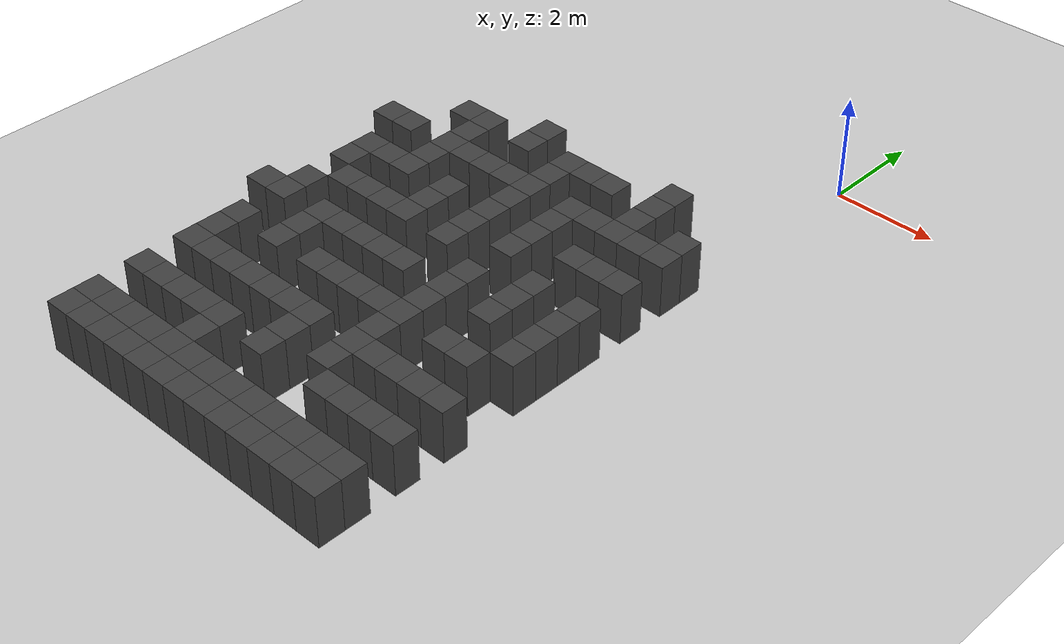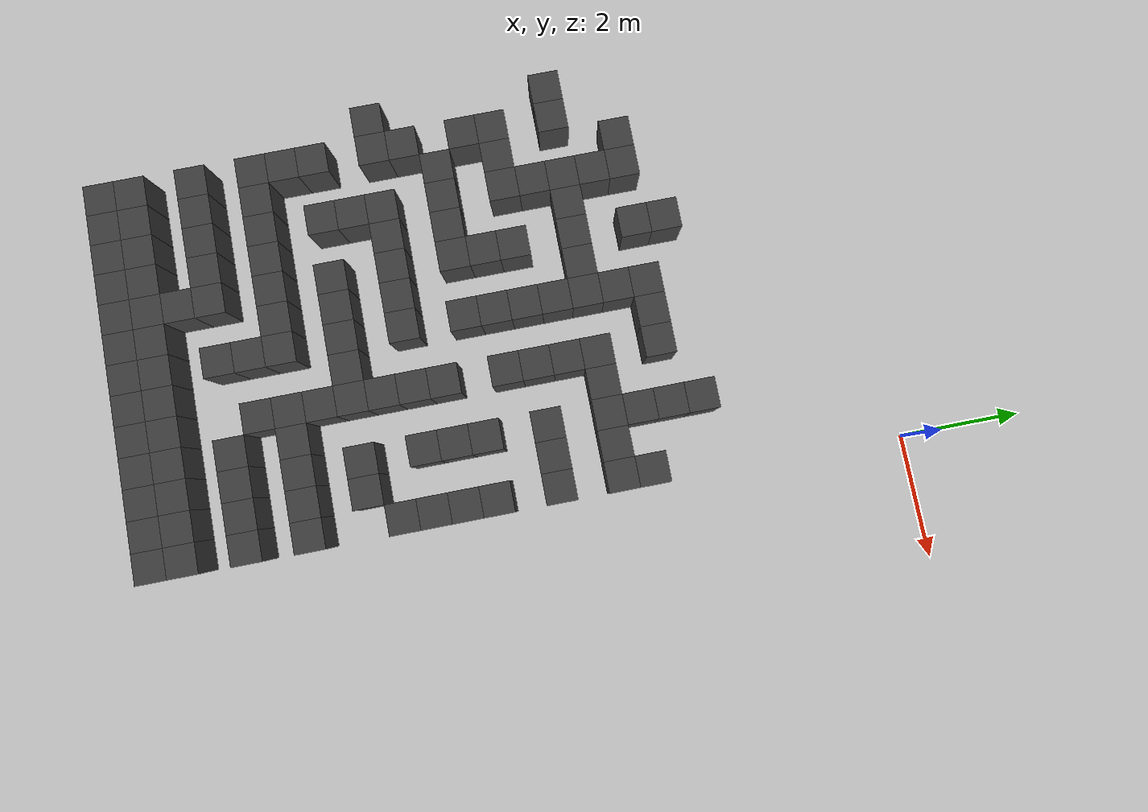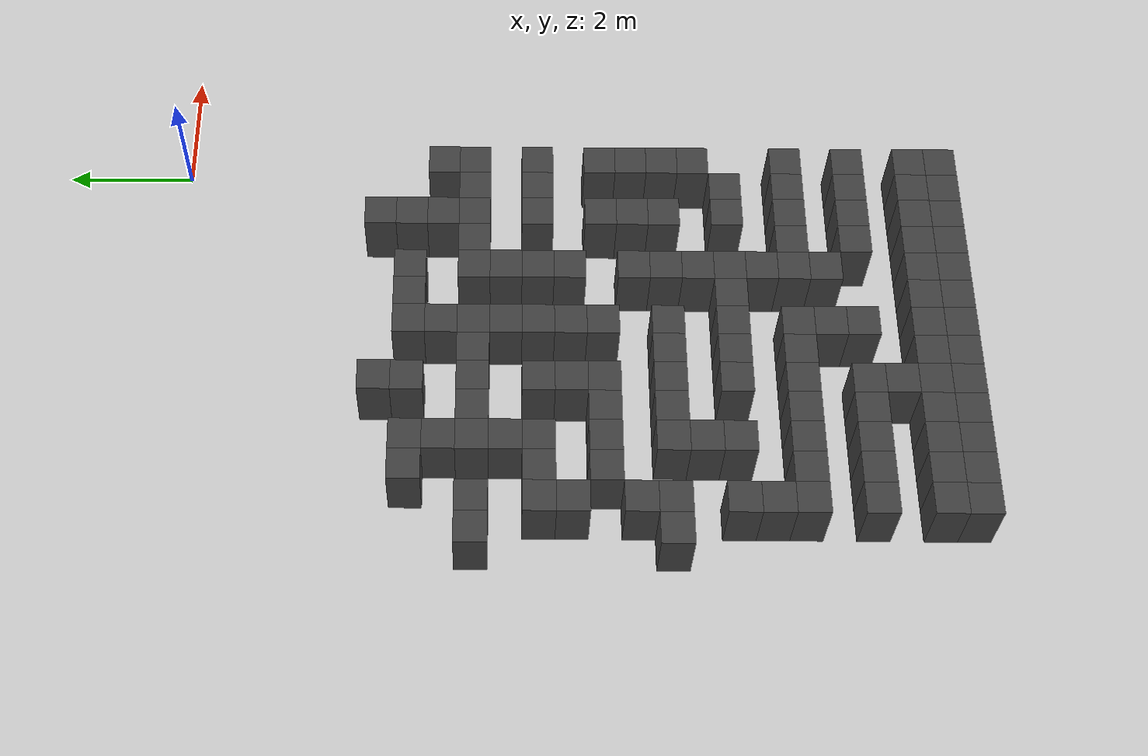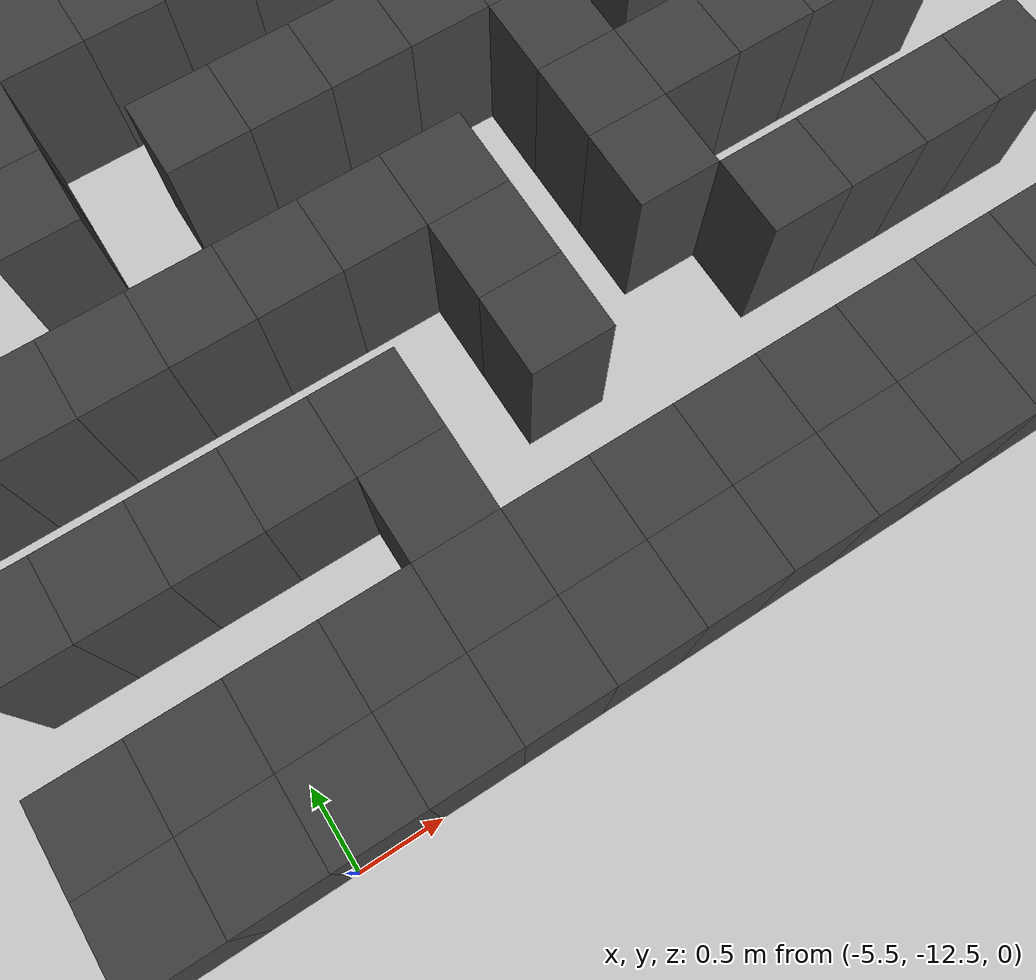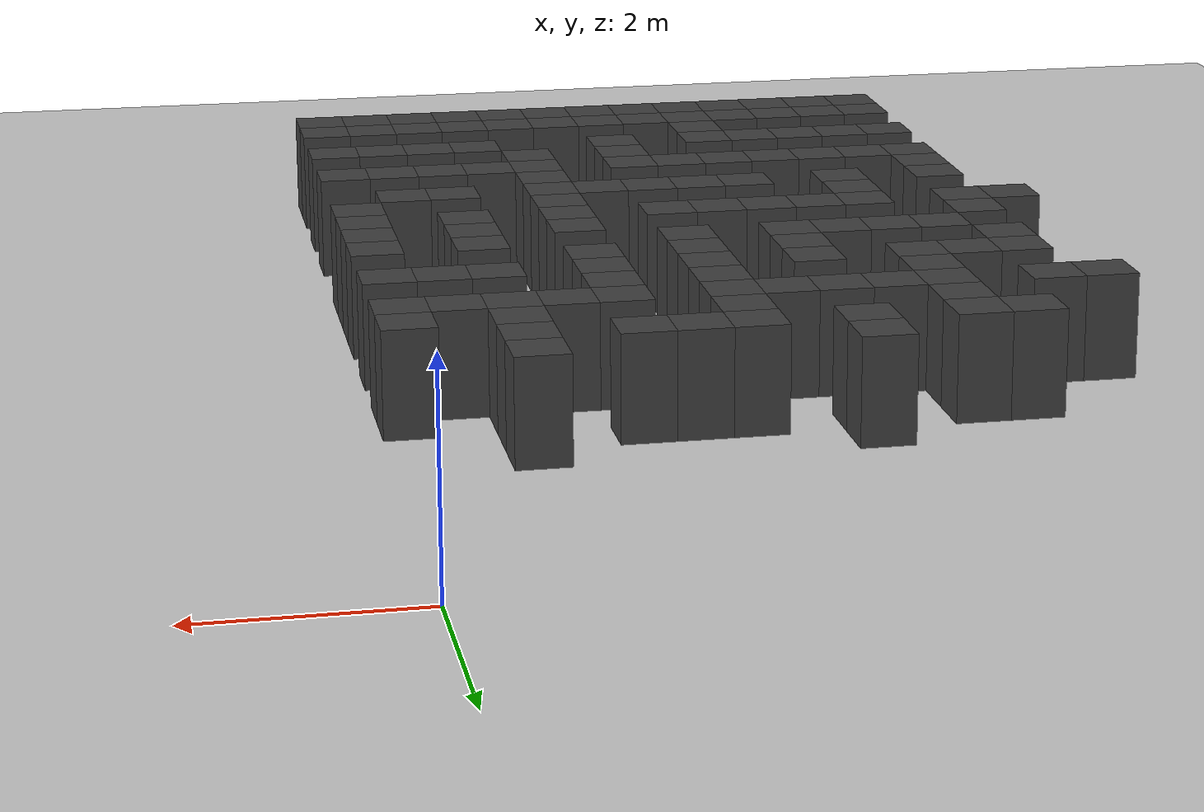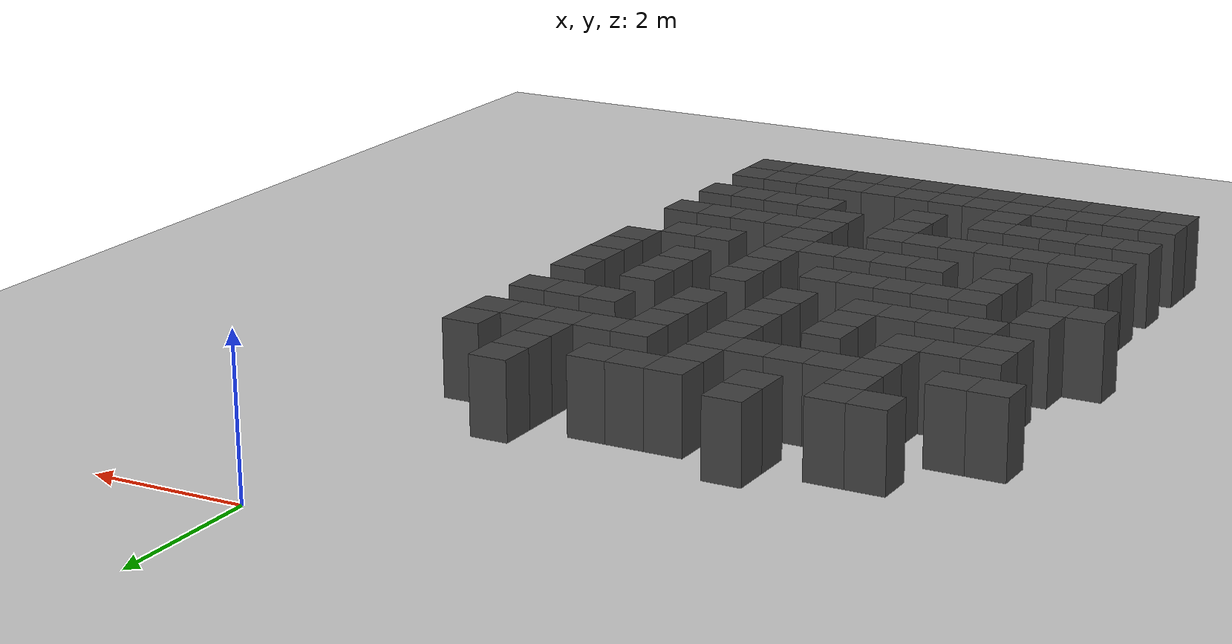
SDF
<sdf version="1.7">
 <world name="map_17508">
  <model name="ground_plane">
   <static>true</static>
   <link name="link">
    <collision name="collision">
     <geometry><plane><normal>0 0 1</normal><size>200 200</size></plane></geometry>
    </collision>
    <visual name="visual">
     <geometry><plane><normal>0 0 1</normal><size>200 200</size></plane></geometry>
     <material><ambient>0.8 0.8 0.8 1</ambient><diffuse>0.8 0.8 0.8 1</diffuse></material>
    </visual>
   </link>
  </model>
  <model name="maze_environment">
   <static>true</static>
   <link name="wall_776">
    <pose>-4.250 -3.250 0.500 0 0 0</pose>
    <collision name="col"><geometry><box><size>0.5 0.5 1.0</size></box></geometry></collision>
    <visual name="vis">
     <geometry><box><size>0.5 0.5 1.0</size></box></geometry>
     <material><ambient>0.15 0.15 0.15 1</ambient><diffuse>0.25 0.25 0.25 1</diffuse></material>
    </visual>
   </link>
   <link name="wall_777">
    <pose>-1.250 -3.250 0.500 0 0 0</pose>
    <collision name="col"><geometry><box><size>0.5 0.5 1.0</size></box></geometry></collision>
    <visual name="vis">
     <geometry><box><size>0.5 0.5 1.0</size></box></geometry>
     <material><ambient>0.15 0.15 0.15 1</ambient><diffuse>0.25 0.25 0.25 1</diffuse></material>
    </visual>
   </link>
   <link name="wall_793">
    <pose>-5.750 -3.750 0.500 0 0 0</pose>
    <collision name="col"><geometry><box><size>0.5 0.5 1.0</size></box></geometry></collision>
    <visual name="vis">
     <geometry><box><size>0.5 0.5 1.0</size></box></geometry>
     <material><ambient>0.15 0.15 0.15 1</ambient><diffuse>0.25 0.25 0.25 1</diffuse></material>
    </visual>
   </link>
   <link name="wall_794">
    <pose>-5.250 -3.750 0.500 0 0 0</pose>
    <collision name="col"><geometry><box><size>0.5 0.5 1.0</size></box></geometry></collision>
    <visual name="vis">
     <geometry><box><size>0.5 0.5 1.0</size></box></geometry>
     <material><ambient>0.15 0.15 0.15 1</ambient><diffuse>0.25 0.25 0.25 1</diffuse></material>
    </visual>
   </link>
   <link name="wall_795">
    <pose>-4.250 -3.750 0.500 0 0 0</pose>
    <collision name="col"><geometry><box><size>0.5 0.5 1.0</size></box></geometry></collision>
    <visual name="vis">
     <geometry><box><size>0.5 0.5 1.0</size></box></geometry>
     <material><ambient>0.15 0.15 0.15 1</ambient><diffuse>0.25 0.25 0.25 1</diffuse></material>
    </visual>
   </link>
   <link name="wall_796">
    <pose>-3.250 -3.750 0.500 0 0 0</pose>
    <collision name="col"><geometry><box><size>0.5 0.5 1.0</size></box></geometry></collision>
    <visual name="vis">
     <geometry><box><size>0.5 0.5 1.0</size></box></geometry>
     <material><ambient>0.15 0.15 0.15 1</ambient><diffuse>0.25 0.25 0.25 1</diffuse></material>
    </visual>
   </link>
   <link name="wall_797">
    <pose>-2.750 -3.750 0.500 0 0 0</pose>
    <collision name="col"><geometry><box><size>0.5 0.5 1.0</size></box></geometry></collision>
    <visual name="vis">
     <geometry><box><size>0.5 0.5 1.0</size></box></geometry>
     <material><ambient>0.15 0.15 0.15 1</ambient><diffuse>0.25 0.25 0.25 1</diffuse></material>
    </visual>
   </link>
   <link name="wall_798">
    <pose>-2.250 -3.750 0.500 0 0 0</pose>
    <collision name="col"><geometry><box><size>0.5 0.5 1.0</size></box></geometry></collision>
    <visual name="vis">
     <geometry><box><size>0.5 0.5 1.0</size></box></geometry>
     <material><ambient>0.15 0.15 0.15 1</ambient><diffuse>0.25 0.25 0.25 1</diffuse></material>
    </visual>
   </link>
   <link name="wall_799">
    <pose>-1.250 -3.750 0.500 0 0 0</pose>
    <collision name="col"><geometry><box><size>0.5 0.5 1.0</size></box></geometry></collision>
    <visual name="vis">
     <geometry><box><size>0.5 0.5 1.0</size></box></geometry>
     <material><ambient>0.15 0.15 0.15 1</ambient><diffuse>0.25 0.25 0.25 1</diffuse></material>
    </visual>
   </link>
   <link name="wall_820">
    <pose>-5.250 -4.250 0.500 0 0 0</pose>
    <collision name="col"><geometry><box><size>0.5 0.5 1.0</size></box></geometry></collision>
    <visual name="vis">
     <geometry><box><size>0.5 0.5 1.0</size></box></geometry>
     <material><ambient>0.15 0.15 0.15 1</ambient><diffuse>0.25 0.25 0.25 1</diffuse></material>
    </visual>
   </link>
   <link name="wall_821">
    <pose>-3.250 -4.250 0.500 0 0 0</pose>
    <collision name="col"><geometry><box><size>0.5 0.5 1.0</size></box></geometry></collision>
    <visual name="vis">
     <geometry><box><size>0.5 0.5 1.0</size></box></geometry>
     <material><ambient>0.15 0.15 0.15 1</ambient><diffuse>0.25 0.25 0.25 1</diffuse></material>
    </visual>
   </link>
   <link name="wall_822">
    <pose>-1.250 -4.250 0.500 0 0 0</pose>
    <collision name="col"><geometry><box><size>0.5 0.5 1.0</size></box></geometry></collision>
    <visual name="vis">
     <geometry><box><size>0.5 0.5 1.0</size></box></geometry>
     <material><ambient>0.15 0.15 0.15 1</ambient><diffuse>0.25 0.25 0.25 1</diffuse></material>
    </visual>
   </link>
   <link name="wall_823">
    <pose>-0.250 -4.250 0.500 0 0 0</pose>
    <collision name="col"><geometry><box><size>0.5 0.5 1.0</size></box></geometry></collision>
    <visual name="vis">
     <geometry><box><size>0.5 0.5 1.0</size></box></geometry>
     <material><ambient>0.15 0.15 0.15 1</ambient><diffuse>0.25 0.25 0.25 1</diffuse></material>
    </visual>
   </link>
   <link name="wall_841">
    <pose>-6.750 -4.750 0.500 0 0 0</pose>
    <collision name="col"><geometry><box><size>0.5 0.5 1.0</size></box></geometry></collision>
    <visual name="vis">
     <geometry><box><size>0.5 0.5 1.0</size></box></geometry>
     <material><ambient>0.15 0.15 0.15 1</ambient><diffuse>0.25 0.25 0.25 1</diffuse></material>
    </visual>
   </link>
   <link name="wall_842">
    <pose>-6.250 -4.750 0.500 0 0 0</pose>
    <collision name="col"><geometry><box><size>0.5 0.5 1.0</size></box></geometry></collision>
    <visual name="vis">
     <geometry><box><size>0.5 0.5 1.0</size></box></geometry>
     <material><ambient>0.15 0.15 0.15 1</ambient><diffuse>0.25 0.25 0.25 1</diffuse></material>
    </visual>
   </link>
   <link name="wall_843">
    <pose>-5.250 -4.750 0.500 0 0 0</pose>
    <collision name="col"><geometry><box><size>0.5 0.5 1.0</size></box></geometry></collision>
    <visual name="vis">
     <geometry><box><size>0.5 0.5 1.0</size></box></geometry>
     <material><ambient>0.15 0.15 0.15 1</ambient><diffuse>0.25 0.25 0.25 1</diffuse></material>
    </visual>
   </link>
   <link name="wall_844">
    <pose>-4.750 -4.750 0.500 0 0 0</pose>
    <collision name="col"><geometry><box><size>0.5 0.5 1.0</size></box></geometry></collision>
    <visual name="vis">
     <geometry><box><size>0.5 0.5 1.0</size></box></geometry>
     <material><ambient>0.15 0.15 0.15 1</ambient><diffuse>0.25 0.25 0.25 1</diffuse></material>
    </visual>
   </link>
   <link name="wall_845">
    <pose>-4.250 -4.750 0.500 0 0 0</pose>
    <collision name="col"><geometry><box><size>0.5 0.5 1.0</size></box></geometry></collision>
    <visual name="vis">
     <geometry><box><size>0.5 0.5 1.0</size></box></geometry>
     <material><ambient>0.15 0.15 0.15 1</ambient><diffuse>0.25 0.25 0.25 1</diffuse></material>
    </visual>
   </link>
   <link name="wall_846">
    <pose>-3.750 -4.750 0.500 0 0 0</pose>
    <collision name="col"><geometry><box><size>0.5 0.5 1.0</size></box></geometry></collision>
    <visual name="vis">
     <geometry><box><size>0.5 0.5 1.0</size></box></geometry>
     <material><ambient>0.15 0.15 0.15 1</ambient><diffuse>0.25 0.25 0.25 1</diffuse></material>
    </visual>
   </link>
   <link name="wall_847">
    <pose>-3.250 -4.750 0.500 0 0 0</pose>
    <collision name="col"><geometry><box><size>0.5 0.5 1.0</size></box></geometry></collision>
    <visual name="vis">
     <geometry><box><size>0.5 0.5 1.0</size></box></geometry>
     <material><ambient>0.15 0.15 0.15 1</ambient><diffuse>0.25 0.25 0.25 1</diffuse></material>
    </visual>
   </link>
   <link name="wall_848">
    <pose>-2.250 -4.750 0.500 0 0 0</pose>
    <collision name="col"><geometry><box><size>0.5 0.5 1.0</size></box></geometry></collision>
    <visual name="vis">
     <geometry><box><size>0.5 0.5 1.0</size></box></geometry>
     <material><ambient>0.15 0.15 0.15 1</ambient><diffuse>0.25 0.25 0.25 1</diffuse></material>
    </visual>
   </link>
   <link name="wall_849">
    <pose>-1.750 -4.750 0.500 0 0 0</pose>
    <collision name="col"><geometry><box><size>0.5 0.5 1.0</size></box></geometry></collision>
    <visual name="vis">
     <geometry><box><size>0.5 0.5 1.0</size></box></geometry>
     <material><ambient>0.15 0.15 0.15 1</ambient><diffuse>0.25 0.25 0.25 1</diffuse></material>
    </visual>
   </link>
   <link name="wall_850">
    <pose>-1.250 -4.750 0.500 0 0 0</pose>
    <collision name="col"><geometry><box><size>0.5 0.5 1.0</size></box></geometry></collision>
    <visual name="vis">
     <geometry><box><size>0.5 0.5 1.0</size></box></geometry>
     <material><ambient>0.15 0.15 0.15 1</ambient><diffuse>0.25 0.25 0.25 1</diffuse></material>
    </visual>
   </link>
   <link name="wall_851">
    <pose>-0.750 -4.750 0.500 0 0 0</pose>
    <collision name="col"><geometry><box><size>0.5 0.5 1.0</size></box></geometry></collision>
    <visual name="vis">
     <geometry><box><size>0.5 0.5 1.0</size></box></geometry>
     <material><ambient>0.15 0.15 0.15 1</ambient><diffuse>0.25 0.25 0.25 1</diffuse></material>
    </visual>
   </link>
   <link name="wall_852">
    <pose>-0.250 -4.750 0.500 0 0 0</pose>
    <collision name="col"><geometry><box><size>0.5 0.5 1.0</size></box></geometry></collision>
    <visual name="vis">
     <geometry><box><size>0.5 0.5 1.0</size></box></geometry>
     <material><ambient>0.15 0.15 0.15 1</ambient><diffuse>0.25 0.25 0.25 1</diffuse></material>
    </visual>
   </link>
   <link name="wall_871">
    <pose>-5.250 -5.250 0.500 0 0 0</pose>
    <collision name="col"><geometry><box><size>0.5 0.5 1.0</size></box></geometry></collision>
    <visual name="vis">
     <geometry><box><size>0.5 0.5 1.0</size></box></geometry>
     <material><ambient>0.15 0.15 0.15 1</ambient><diffuse>0.25 0.25 0.25 1</diffuse></material>
    </visual>
   </link>
   <link name="wall_872">
    <pose>-3.250 -5.250 0.500 0 0 0</pose>
    <collision name="col"><geometry><box><size>0.5 0.5 1.0</size></box></geometry></collision>
    <visual name="vis">
     <geometry><box><size>0.5 0.5 1.0</size></box></geometry>
     <material><ambient>0.15 0.15 0.15 1</ambient><diffuse>0.25 0.25 0.25 1</diffuse></material>
    </visual>
   </link>
   <link name="wall_873">
    <pose>-2.250 -5.250 0.500 0 0 0</pose>
    <collision name="col"><geometry><box><size>0.5 0.5 1.0</size></box></geometry></collision>
    <visual name="vis">
     <geometry><box><size>0.5 0.5 1.0</size></box></geometry>
     <material><ambient>0.15 0.15 0.15 1</ambient><diffuse>0.25 0.25 0.25 1</diffuse></material>
    </visual>
   </link>
   <link name="wall_893">
    <pose>-6.250 -5.750 0.500 0 0 0</pose>
    <collision name="col"><geometry><box><size>0.5 0.5 1.0</size></box></geometry></collision>
    <visual name="vis">
     <geometry><box><size>0.5 0.5 1.0</size></box></geometry>
     <material><ambient>0.15 0.15 0.15 1</ambient><diffuse>0.25 0.25 0.25 1</diffuse></material>
    </visual>
   </link>
   <link name="wall_894">
    <pose>-5.750 -5.750 0.500 0 0 0</pose>
    <collision name="col"><geometry><box><size>0.5 0.5 1.0</size></box></geometry></collision>
    <visual name="vis">
     <geometry><box><size>0.5 0.5 1.0</size></box></geometry>
     <material><ambient>0.15 0.15 0.15 1</ambient><diffuse>0.25 0.25 0.25 1</diffuse></material>
    </visual>
   </link>
   <link name="wall_895">
    <pose>-5.250 -5.750 0.500 0 0 0</pose>
    <collision name="col"><geometry><box><size>0.5 0.5 1.0</size></box></geometry></collision>
    <visual name="vis">
     <geometry><box><size>0.5 0.5 1.0</size></box></geometry>
     <material><ambient>0.15 0.15 0.15 1</ambient><diffuse>0.25 0.25 0.25 1</diffuse></material>
    </visual>
   </link>
   <link name="wall_896">
    <pose>-4.250 -5.750 0.500 0 0 0</pose>
    <collision name="col"><geometry><box><size>0.5 0.5 1.0</size></box></geometry></collision>
    <visual name="vis">
     <geometry><box><size>0.5 0.5 1.0</size></box></geometry>
     <material><ambient>0.15 0.15 0.15 1</ambient><diffuse>0.25 0.25 0.25 1</diffuse></material>
    </visual>
   </link>
   <link name="wall_897">
    <pose>-3.250 -5.750 0.500 0 0 0</pose>
    <collision name="col"><geometry><box><size>0.5 0.5 1.0</size></box></geometry></collision>
    <visual name="vis">
     <geometry><box><size>0.5 0.5 1.0</size></box></geometry>
     <material><ambient>0.15 0.15 0.15 1</ambient><diffuse>0.25 0.25 0.25 1</diffuse></material>
    </visual>
   </link>
   <link name="wall_898">
    <pose>-2.250 -5.750 0.500 0 0 0</pose>
    <collision name="col"><geometry><box><size>0.5 0.5 1.0</size></box></geometry></collision>
    <visual name="vis">
     <geometry><box><size>0.5 0.5 1.0</size></box></geometry>
     <material><ambient>0.15 0.15 0.15 1</ambient><diffuse>0.25 0.25 0.25 1</diffuse></material>
    </visual>
   </link>
   <link name="wall_899">
    <pose>-1.250 -5.750 0.500 0 0 0</pose>
    <collision name="col"><geometry><box><size>0.5 0.5 1.0</size></box></geometry></collision>
    <visual name="vis">
     <geometry><box><size>0.5 0.5 1.0</size></box></geometry>
     <material><ambient>0.15 0.15 0.15 1</ambient><diffuse>0.25 0.25 0.25 1</diffuse></material>
    </visual>
   </link>
   <link name="wall_900">
    <pose>-0.750 -5.750 0.500 0 0 0</pose>
    <collision name="col"><geometry><box><size>0.5 0.5 1.0</size></box></geometry></collision>
    <visual name="vis">
     <geometry><box><size>0.5 0.5 1.0</size></box></geometry>
     <material><ambient>0.15 0.15 0.15 1</ambient><diffuse>0.25 0.25 0.25 1</diffuse></material>
    </visual>
   </link>
   <link name="wall_901">
    <pose>-0.250 -5.750 0.500 0 0 0</pose>
    <collision name="col"><geometry><box><size>0.5 0.5 1.0</size></box></geometry></collision>
    <visual name="vis">
     <geometry><box><size>0.5 0.5 1.0</size></box></geometry>
     <material><ambient>0.15 0.15 0.15 1</ambient><diffuse>0.25 0.25 0.25 1</diffuse></material>
    </visual>
   </link>
   <link name="wall_921">
    <pose>-6.250 -6.250 0.500 0 0 0</pose>
    <collision name="col"><geometry><box><size>0.5 0.5 1.0</size></box></geometry></collision>
    <visual name="vis">
     <geometry><box><size>0.5 0.5 1.0</size></box></geometry>
     <material><ambient>0.15 0.15 0.15 1</ambient><diffuse>0.25 0.25 0.25 1</diffuse></material>
    </visual>
   </link>
   <link name="wall_922">
    <pose>-4.250 -6.250 0.500 0 0 0</pose>
    <collision name="col"><geometry><box><size>0.5 0.5 1.0</size></box></geometry></collision>
    <visual name="vis">
     <geometry><box><size>0.5 0.5 1.0</size></box></geometry>
     <material><ambient>0.15 0.15 0.15 1</ambient><diffuse>0.25 0.25 0.25 1</diffuse></material>
    </visual>
   </link>
   <link name="wall_923">
    <pose>-3.250 -6.250 0.500 0 0 0</pose>
    <collision name="col"><geometry><box><size>0.5 0.5 1.0</size></box></geometry></collision>
    <visual name="vis">
     <geometry><box><size>0.5 0.5 1.0</size></box></geometry>
     <material><ambient>0.15 0.15 0.15 1</ambient><diffuse>0.25 0.25 0.25 1</diffuse></material>
    </visual>
   </link>
   <link name="wall_924">
    <pose>-2.250 -6.250 0.500 0 0 0</pose>
    <collision name="col"><geometry><box><size>0.5 0.5 1.0</size></box></geometry></collision>
    <visual name="vis">
     <geometry><box><size>0.5 0.5 1.0</size></box></geometry>
     <material><ambient>0.15 0.15 0.15 1</ambient><diffuse>0.25 0.25 0.25 1</diffuse></material>
    </visual>
   </link>
   <link name="wall_939">
    <pose>-5.750 -6.750 0.500 0 0 0</pose>
    <collision name="col"><geometry><box><size>0.5 0.5 1.0</size></box></geometry></collision>
    <visual name="vis">
     <geometry><box><size>0.5 0.5 1.0</size></box></geometry>
     <material><ambient>0.15 0.15 0.15 1</ambient><diffuse>0.25 0.25 0.25 1</diffuse></material>
    </visual>
   </link>
   <link name="wall_940">
    <pose>-5.250 -6.750 0.500 0 0 0</pose>
    <collision name="col"><geometry><box><size>0.5 0.5 1.0</size></box></geometry></collision>
    <visual name="vis">
     <geometry><box><size>0.5 0.5 1.0</size></box></geometry>
     <material><ambient>0.15 0.15 0.15 1</ambient><diffuse>0.25 0.25 0.25 1</diffuse></material>
    </visual>
   </link>
   <link name="wall_941">
    <pose>-4.750 -6.750 0.500 0 0 0</pose>
    <collision name="col"><geometry><box><size>0.5 0.5 1.0</size></box></geometry></collision>
    <visual name="vis">
     <geometry><box><size>0.5 0.5 1.0</size></box></geometry>
     <material><ambient>0.15 0.15 0.15 1</ambient><diffuse>0.25 0.25 0.25 1</diffuse></material>
    </visual>
   </link>
   <link name="wall_942">
    <pose>-4.250 -6.750 0.500 0 0 0</pose>
    <collision name="col"><geometry><box><size>0.5 0.5 1.0</size></box></geometry></collision>
    <visual name="vis">
     <geometry><box><size>0.5 0.5 1.0</size></box></geometry>
     <material><ambient>0.15 0.15 0.15 1</ambient><diffuse>0.25 0.25 0.25 1</diffuse></material>
    </visual>
   </link>
   <link name="wall_943">
    <pose>-3.250 -6.750 0.500 0 0 0</pose>
    <collision name="col"><geometry><box><size>0.5 0.5 1.0</size></box></geometry></collision>
    <visual name="vis">
     <geometry><box><size>0.5 0.5 1.0</size></box></geometry>
     <material><ambient>0.15 0.15 0.15 1</ambient><diffuse>0.25 0.25 0.25 1</diffuse></material>
    </visual>
   </link>
   <link name="wall_944">
    <pose>-1.250 -6.750 0.500 0 0 0</pose>
    <collision name="col"><geometry><box><size>0.5 0.5 1.0</size></box></geometry></collision>
    <visual name="vis">
     <geometry><box><size>0.5 0.5 1.0</size></box></geometry>
     <material><ambient>0.15 0.15 0.15 1</ambient><diffuse>0.25 0.25 0.25 1</diffuse></material>
    </visual>
   </link>
   <link name="wall_945">
    <pose>-0.250 -6.750 0.500 0 0 0</pose>
    <collision name="col"><geometry><box><size>0.5 0.5 1.0</size></box></geometry></collision>
    <visual name="vis">
     <geometry><box><size>0.5 0.5 1.0</size></box></geometry>
     <material><ambient>0.15 0.15 0.15 1</ambient><diffuse>0.25 0.25 0.25 1</diffuse></material>
    </visual>
   </link>
   <link name="wall_970">
    <pose>-6.250 -7.250 0.500 0 0 0</pose>
    <collision name="col"><geometry><box><size>0.5 0.5 1.0</size></box></geometry></collision>
    <visual name="vis">
     <geometry><box><size>0.5 0.5 1.0</size></box></geometry>
     <material><ambient>0.15 0.15 0.15 1</ambient><diffuse>0.25 0.25 0.25 1</diffuse></material>
    </visual>
   </link>
   <link name="wall_971">
    <pose>-2.250 -7.250 0.500 0 0 0</pose>
    <collision name="col"><geometry><box><size>0.5 0.5 1.0</size></box></geometry></collision>
    <visual name="vis">
     <geometry><box><size>0.5 0.5 1.0</size></box></geometry>
     <material><ambient>0.15 0.15 0.15 1</ambient><diffuse>0.25 0.25 0.25 1</diffuse></material>
    </visual>
   </link>
   <link name="wall_972">
    <pose>-1.250 -7.250 0.500 0 0 0</pose>
    <collision name="col"><geometry><box><size>0.5 0.5 1.0</size></box></geometry></collision>
    <visual name="vis">
     <geometry><box><size>0.5 0.5 1.0</size></box></geometry>
     <material><ambient>0.15 0.15 0.15 1</ambient><diffuse>0.25 0.25 0.25 1</diffuse></material>
    </visual>
   </link>
   <link name="wall_973">
    <pose>-0.250 -7.250 0.500 0 0 0</pose>
    <collision name="col"><geometry><box><size>0.5 0.5 1.0</size></box></geometry></collision>
    <visual name="vis">
     <geometry><box><size>0.5 0.5 1.0</size></box></geometry>
     <material><ambient>0.15 0.15 0.15 1</ambient><diffuse>0.25 0.25 0.25 1</diffuse></material>
    </visual>
   </link>
   <link name="wall_989">
    <pose>-6.750 -7.750 0.500 0 0 0</pose>
    <collision name="col"><geometry><box><size>0.5 0.5 1.0</size></box></geometry></collision>
    <visual name="vis">
     <geometry><box><size>0.5 0.5 1.0</size></box></geometry>
     <material><ambient>0.15 0.15 0.15 1</ambient><diffuse>0.25 0.25 0.25 1</diffuse></material>
    </visual>
   </link>
   <link name="wall_990">
    <pose>-6.250 -7.750 0.500 0 0 0</pose>
    <collision name="col"><geometry><box><size>0.5 0.5 1.0</size></box></geometry></collision>
    <visual name="vis">
     <geometry><box><size>0.5 0.5 1.0</size></box></geometry>
     <material><ambient>0.15 0.15 0.15 1</ambient><diffuse>0.25 0.25 0.25 1</diffuse></material>
    </visual>
   </link>
   <link name="wall_991">
    <pose>-5.250 -7.750 0.500 0 0 0</pose>
    <collision name="col"><geometry><box><size>0.5 0.5 1.0</size></box></geometry></collision>
    <visual name="vis">
     <geometry><box><size>0.5 0.5 1.0</size></box></geometry>
     <material><ambient>0.15 0.15 0.15 1</ambient><diffuse>0.25 0.25 0.25 1</diffuse></material>
    </visual>
   </link>
   <link name="wall_992">
    <pose>-4.750 -7.750 0.500 0 0 0</pose>
    <collision name="col"><geometry><box><size>0.5 0.5 1.0</size></box></geometry></collision>
    <visual name="vis">
     <geometry><box><size>0.5 0.5 1.0</size></box></geometry>
     <material><ambient>0.15 0.15 0.15 1</ambient><diffuse>0.25 0.25 0.25 1</diffuse></material>
    </visual>
   </link>
   <link name="wall_993">
    <pose>-4.250 -7.750 0.500 0 0 0</pose>
    <collision name="col"><geometry><box><size>0.5 0.5 1.0</size></box></geometry></collision>
    <visual name="vis">
     <geometry><box><size>0.5 0.5 1.0</size></box></geometry>
     <material><ambient>0.15 0.15 0.15 1</ambient><diffuse>0.25 0.25 0.25 1</diffuse></material>
    </visual>
   </link>
   <link name="wall_994">
    <pose>-3.750 -7.750 0.500 0 0 0</pose>
    <collision name="col"><geometry><box><size>0.5 0.5 1.0</size></box></geometry></collision>
    <visual name="vis">
     <geometry><box><size>0.5 0.5 1.0</size></box></geometry>
     <material><ambient>0.15 0.15 0.15 1</ambient><diffuse>0.25 0.25 0.25 1</diffuse></material>
    </visual>
   </link>
   <link name="wall_995">
    <pose>-3.250 -7.750 0.500 0 0 0</pose>
    <collision name="col"><geometry><box><size>0.5 0.5 1.0</size></box></geometry></collision>
    <visual name="vis">
     <geometry><box><size>0.5 0.5 1.0</size></box></geometry>
     <material><ambient>0.15 0.15 0.15 1</ambient><diffuse>0.25 0.25 0.25 1</diffuse></material>
    </visual>
   </link>
   <link name="wall_996">
    <pose>-2.250 -7.750 0.500 0 0 0</pose>
    <collision name="col"><geometry><box><size>0.5 0.5 1.0</size></box></geometry></collision>
    <visual name="vis">
     <geometry><box><size>0.5 0.5 1.0</size></box></geometry>
     <material><ambient>0.15 0.15 0.15 1</ambient><diffuse>0.25 0.25 0.25 1</diffuse></material>
    </visual>
   </link>
   <link name="wall_997">
    <pose>-1.250 -7.750 0.500 0 0 0</pose>
    <collision name="col"><geometry><box><size>0.5 0.5 1.0</size></box></geometry></collision>
    <visual name="vis">
     <geometry><box><size>0.5 0.5 1.0</size></box></geometry>
     <material><ambient>0.15 0.15 0.15 1</ambient><diffuse>0.25 0.25 0.25 1</diffuse></material>
    </visual>
   </link>
   <link name="wall_998">
    <pose>-0.250 -7.750 0.500 0 0 0</pose>
    <collision name="col"><geometry><box><size>0.5 0.5 1.0</size></box></geometry></collision>
    <visual name="vis">
     <geometry><box><size>0.5 0.5 1.0</size></box></geometry>
     <material><ambient>0.15 0.15 0.15 1</ambient><diffuse>0.25 0.25 0.25 1</diffuse></material>
    </visual>
   </link>
   <link name="wall_1019">
    <pose>-5.250 -8.250 0.500 0 0 0</pose>
    <collision name="col"><geometry><box><size>0.5 0.5 1.0</size></box></geometry></collision>
    <visual name="vis">
     <geometry><box><size>0.5 0.5 1.0</size></box></geometry>
     <material><ambient>0.15 0.15 0.15 1</ambient><diffuse>0.25 0.25 0.25 1</diffuse></material>
    </visual>
   </link>
   <link name="wall_1020">
    <pose>-2.250 -8.250 0.500 0 0 0</pose>
    <collision name="col"><geometry><box><size>0.5 0.5 1.0</size></box></geometry></collision>
    <visual name="vis">
     <geometry><box><size>0.5 0.5 1.0</size></box></geometry>
     <material><ambient>0.15 0.15 0.15 1</ambient><diffuse>0.25 0.25 0.25 1</diffuse></material>
    </visual>
   </link>
   <link name="wall_1021">
    <pose>-0.250 -8.250 0.500 0 0 0</pose>
    <collision name="col"><geometry><box><size>0.5 0.5 1.0</size></box></geometry></collision>
    <visual name="vis">
     <geometry><box><size>0.5 0.5 1.0</size></box></geometry>
     <material><ambient>0.15 0.15 0.15 1</ambient><diffuse>0.25 0.25 0.25 1</diffuse></material>
    </visual>
   </link>
   <link name="wall_1039">
    <pose>-6.250 -8.750 0.500 0 0 0</pose>
    <collision name="col"><geometry><box><size>0.5 0.5 1.0</size></box></geometry></collision>
    <visual name="vis">
     <geometry><box><size>0.5 0.5 1.0</size></box></geometry>
     <material><ambient>0.15 0.15 0.15 1</ambient><diffuse>0.25 0.25 0.25 1</diffuse></material>
    </visual>
   </link>
   <link name="wall_1040">
    <pose>-5.250 -8.750 0.500 0 0 0</pose>
    <collision name="col"><geometry><box><size>0.5 0.5 1.0</size></box></geometry></collision>
    <visual name="vis">
     <geometry><box><size>0.5 0.5 1.0</size></box></geometry>
     <material><ambient>0.15 0.15 0.15 1</ambient><diffuse>0.25 0.25 0.25 1</diffuse></material>
    </visual>
   </link>
   <link name="wall_1041">
    <pose>-4.250 -8.750 0.500 0 0 0</pose>
    <collision name="col"><geometry><box><size>0.5 0.5 1.0</size></box></geometry></collision>
    <visual name="vis">
     <geometry><box><size>0.5 0.5 1.0</size></box></geometry>
     <material><ambient>0.15 0.15 0.15 1</ambient><diffuse>0.25 0.25 0.25 1</diffuse></material>
    </visual>
   </link>
   <link name="wall_1042">
    <pose>-3.750 -8.750 0.500 0 0 0</pose>
    <collision name="col"><geometry><box><size>0.5 0.5 1.0</size></box></geometry></collision>
    <visual name="vis">
     <geometry><box><size>0.5 0.5 1.0</size></box></geometry>
     <material><ambient>0.15 0.15 0.15 1</ambient><diffuse>0.25 0.25 0.25 1</diffuse></material>
    </visual>
   </link>
   <link name="wall_1043">
    <pose>-3.250 -8.750 0.500 0 0 0</pose>
    <collision name="col"><geometry><box><size>0.5 0.5 1.0</size></box></geometry></collision>
    <visual name="vis">
     <geometry><box><size>0.5 0.5 1.0</size></box></geometry>
     <material><ambient>0.15 0.15 0.15 1</ambient><diffuse>0.25 0.25 0.25 1</diffuse></material>
    </visual>
   </link>
   <link name="wall_1044">
    <pose>-2.750 -8.750 0.500 0 0 0</pose>
    <collision name="col"><geometry><box><size>0.5 0.5 1.0</size></box></geometry></collision>
    <visual name="vis">
     <geometry><box><size>0.5 0.5 1.0</size></box></geometry>
     <material><ambient>0.15 0.15 0.15 1</ambient><diffuse>0.25 0.25 0.25 1</diffuse></material>
    </visual>
   </link>
   <link name="wall_1045">
    <pose>-2.250 -8.750 0.500 0 0 0</pose>
    <collision name="col"><geometry><box><size>0.5 0.5 1.0</size></box></geometry></collision>
    <visual name="vis">
     <geometry><box><size>0.5 0.5 1.0</size></box></geometry>
     <material><ambient>0.15 0.15 0.15 1</ambient><diffuse>0.25 0.25 0.25 1</diffuse></material>
    </visual>
   </link>
   <link name="wall_1046">
    <pose>-1.250 -8.750 0.500 0 0 0</pose>
    <collision name="col"><geometry><box><size>0.5 0.5 1.0</size></box></geometry></collision>
    <visual name="vis">
     <geometry><box><size>0.5 0.5 1.0</size></box></geometry>
     <material><ambient>0.15 0.15 0.15 1</ambient><diffuse>0.25 0.25 0.25 1</diffuse></material>
    </visual>
   </link>
   <link name="wall_1047">
    <pose>-0.750 -8.750 0.500 0 0 0</pose>
    <collision name="col"><geometry><box><size>0.5 0.5 1.0</size></box></geometry></collision>
    <visual name="vis">
     <geometry><box><size>0.5 0.5 1.0</size></box></geometry>
     <material><ambient>0.15 0.15 0.15 1</ambient><diffuse>0.25 0.25 0.25 1</diffuse></material>
    </visual>
   </link>
   <link name="wall_1069">
    <pose>-6.250 -9.250 0.500 0 0 0</pose>
    <collision name="col"><geometry><box><size>0.5 0.5 1.0</size></box></geometry></collision>
    <visual name="vis">
     <geometry><box><size>0.5 0.5 1.0</size></box></geometry>
     <material><ambient>0.15 0.15 0.15 1</ambient><diffuse>0.25 0.25 0.25 1</diffuse></material>
    </visual>
   </link>
   <link name="wall_1070">
    <pose>-2.250 -9.250 0.500 0 0 0</pose>
    <collision name="col"><geometry><box><size>0.5 0.5 1.0</size></box></geometry></collision>
    <visual name="vis">
     <geometry><box><size>0.5 0.5 1.0</size></box></geometry>
     <material><ambient>0.15 0.15 0.15 1</ambient><diffuse>0.25 0.25 0.25 1</diffuse></material>
    </visual>
   </link>
   <link name="wall_1087">
    <pose>-6.250 -9.750 0.500 0 0 0</pose>
    <collision name="col"><geometry><box><size>0.5 0.5 1.0</size></box></geometry></collision>
    <visual name="vis">
     <geometry><box><size>0.5 0.5 1.0</size></box></geometry>
     <material><ambient>0.15 0.15 0.15 1</ambient><diffuse>0.25 0.25 0.25 1</diffuse></material>
    </visual>
   </link>
   <link name="wall_1088">
    <pose>-5.750 -9.750 0.500 0 0 0</pose>
    <collision name="col"><geometry><box><size>0.5 0.5 1.0</size></box></geometry></collision>
    <visual name="vis">
     <geometry><box><size>0.5 0.5 1.0</size></box></geometry>
     <material><ambient>0.15 0.15 0.15 1</ambient><diffuse>0.25 0.25 0.25 1</diffuse></material>
    </visual>
   </link>
   <link name="wall_1089">
    <pose>-5.250 -9.750 0.500 0 0 0</pose>
    <collision name="col"><geometry><box><size>0.5 0.5 1.0</size></box></geometry></collision>
    <visual name="vis">
     <geometry><box><size>0.5 0.5 1.0</size></box></geometry>
     <material><ambient>0.15 0.15 0.15 1</ambient><diffuse>0.25 0.25 0.25 1</diffuse></material>
    </visual>
   </link>
   <link name="wall_1090">
    <pose>-4.750 -9.750 0.500 0 0 0</pose>
    <collision name="col"><geometry><box><size>0.5 0.5 1.0</size></box></geometry></collision>
    <visual name="vis">
     <geometry><box><size>0.5 0.5 1.0</size></box></geometry>
     <material><ambient>0.15 0.15 0.15 1</ambient><diffuse>0.25 0.25 0.25 1</diffuse></material>
    </visual>
   </link>
   <link name="wall_1091">
    <pose>-4.250 -9.750 0.500 0 0 0</pose>
    <collision name="col"><geometry><box><size>0.5 0.5 1.0</size></box></geometry></collision>
    <visual name="vis">
     <geometry><box><size>0.5 0.5 1.0</size></box></geometry>
     <material><ambient>0.15 0.15 0.15 1</ambient><diffuse>0.25 0.25 0.25 1</diffuse></material>
    </visual>
   </link>
   <link name="wall_1092">
    <pose>-3.750 -9.750 0.500 0 0 0</pose>
    <collision name="col"><geometry><box><size>0.5 0.5 1.0</size></box></geometry></collision>
    <visual name="vis">
     <geometry><box><size>0.5 0.5 1.0</size></box></geometry>
     <material><ambient>0.15 0.15 0.15 1</ambient><diffuse>0.25 0.25 0.25 1</diffuse></material>
    </visual>
   </link>
   <link name="wall_1093">
    <pose>-3.250 -9.750 0.500 0 0 0</pose>
    <collision name="col"><geometry><box><size>0.5 0.5 1.0</size></box></geometry></collision>
    <visual name="vis">
     <geometry><box><size>0.5 0.5 1.0</size></box></geometry>
     <material><ambient>0.15 0.15 0.15 1</ambient><diffuse>0.25 0.25 0.25 1</diffuse></material>
    </visual>
   </link>
   <link name="wall_1094">
    <pose>-2.250 -9.750 0.500 0 0 0</pose>
    <collision name="col"><geometry><box><size>0.5 0.5 1.0</size></box></geometry></collision>
    <visual name="vis">
     <geometry><box><size>0.5 0.5 1.0</size></box></geometry>
     <material><ambient>0.15 0.15 0.15 1</ambient><diffuse>0.25 0.25 0.25 1</diffuse></material>
    </visual>
   </link>
   <link name="wall_1095">
    <pose>-1.750 -9.750 0.500 0 0 0</pose>
    <collision name="col"><geometry><box><size>0.5 0.5 1.0</size></box></geometry></collision>
    <visual name="vis">
     <geometry><box><size>0.5 0.5 1.0</size></box></geometry>
     <material><ambient>0.15 0.15 0.15 1</ambient><diffuse>0.25 0.25 0.25 1</diffuse></material>
    </visual>
   </link>
   <link name="wall_1096">
    <pose>-1.250 -9.750 0.500 0 0 0</pose>
    <collision name="col"><geometry><box><size>0.5 0.5 1.0</size></box></geometry></collision>
    <visual name="vis">
     <geometry><box><size>0.5 0.5 1.0</size></box></geometry>
     <material><ambient>0.15 0.15 0.15 1</ambient><diffuse>0.25 0.25 0.25 1</diffuse></material>
    </visual>
   </link>
   <link name="wall_1097">
    <pose>-0.750 -9.750 0.500 0 0 0</pose>
    <collision name="col"><geometry><box><size>0.5 0.5 1.0</size></box></geometry></collision>
    <visual name="vis">
     <geometry><box><size>0.5 0.5 1.0</size></box></geometry>
     <material><ambient>0.15 0.15 0.15 1</ambient><diffuse>0.25 0.25 0.25 1</diffuse></material>
    </visual>
   </link>
   <link name="wall_1098">
    <pose>-0.250 -9.750 0.500 0 0 0</pose>
    <collision name="col"><geometry><box><size>0.5 0.5 1.0</size></box></geometry></collision>
    <visual name="vis">
     <geometry><box><size>0.5 0.5 1.0</size></box></geometry>
     <material><ambient>0.15 0.15 0.15 1</ambient><diffuse>0.25 0.25 0.25 1</diffuse></material>
    </visual>
   </link>
   <link name="wall_1118">
    <pose>-3.250 -10.250 0.500 0 0 0</pose>
    <collision name="col"><geometry><box><size>0.5 0.5 1.0</size></box></geometry></collision>
    <visual name="vis">
     <geometry><box><size>0.5 0.5 1.0</size></box></geometry>
     <material><ambient>0.15 0.15 0.15 1</ambient><diffuse>0.25 0.25 0.25 1</diffuse></material>
    </visual>
   </link>
   <link name="wall_1119">
    <pose>-2.250 -10.250 0.500 0 0 0</pose>
    <collision name="col"><geometry><box><size>0.5 0.5 1.0</size></box></geometry></collision>
    <visual name="vis">
     <geometry><box><size>0.5 0.5 1.0</size></box></geometry>
     <material><ambient>0.15 0.15 0.15 1</ambient><diffuse>0.25 0.25 0.25 1</diffuse></material>
    </visual>
   </link>
   <link name="wall_1137">
    <pose>-6.250 -10.750 0.500 0 0 0</pose>
    <collision name="col"><geometry><box><size>0.5 0.5 1.0</size></box></geometry></collision>
    <visual name="vis">
     <geometry><box><size>0.5 0.5 1.0</size></box></geometry>
     <material><ambient>0.15 0.15 0.15 1</ambient><diffuse>0.25 0.25 0.25 1</diffuse></material>
    </visual>
   </link>
   <link name="wall_1138">
    <pose>-5.750 -10.750 0.500 0 0 0</pose>
    <collision name="col"><geometry><box><size>0.5 0.5 1.0</size></box></geometry></collision>
    <visual name="vis">
     <geometry><box><size>0.5 0.5 1.0</size></box></geometry>
     <material><ambient>0.15 0.15 0.15 1</ambient><diffuse>0.25 0.25 0.25 1</diffuse></material>
    </visual>
   </link>
   <link name="wall_1139">
    <pose>-5.250 -10.750 0.500 0 0 0</pose>
    <collision name="col"><geometry><box><size>0.5 0.5 1.0</size></box></geometry></collision>
    <visual name="vis">
     <geometry><box><size>0.5 0.5 1.0</size></box></geometry>
     <material><ambient>0.15 0.15 0.15 1</ambient><diffuse>0.25 0.25 0.25 1</diffuse></material>
    </visual>
   </link>
   <link name="wall_1140">
    <pose>-4.750 -10.750 0.500 0 0 0</pose>
    <collision name="col"><geometry><box><size>0.5 0.5 1.0</size></box></geometry></collision>
    <visual name="vis">
     <geometry><box><size>0.5 0.5 1.0</size></box></geometry>
     <material><ambient>0.15 0.15 0.15 1</ambient><diffuse>0.25 0.25 0.25 1</diffuse></material>
    </visual>
   </link>
   <link name="wall_1141">
    <pose>-4.250 -10.750 0.500 0 0 0</pose>
    <collision name="col"><geometry><box><size>0.5 0.5 1.0</size></box></geometry></collision>
    <visual name="vis">
     <geometry><box><size>0.5 0.5 1.0</size></box></geometry>
     <material><ambient>0.15 0.15 0.15 1</ambient><diffuse>0.25 0.25 0.25 1</diffuse></material>
    </visual>
   </link>
   <link name="wall_1142">
    <pose>-3.250 -10.750 0.500 0 0 0</pose>
    <collision name="col"><geometry><box><size>0.5 0.5 1.0</size></box></geometry></collision>
    <visual name="vis">
     <geometry><box><size>0.5 0.5 1.0</size></box></geometry>
     <material><ambient>0.15 0.15 0.15 1</ambient><diffuse>0.25 0.25 0.25 1</diffuse></material>
    </visual>
   </link>
   <link name="wall_1143">
    <pose>-1.750 -10.750 0.500 0 0 0</pose>
    <collision name="col"><geometry><box><size>0.5 0.5 1.0</size></box></geometry></collision>
    <visual name="vis">
     <geometry><box><size>0.5 0.5 1.0</size></box></geometry>
     <material><ambient>0.15 0.15 0.15 1</ambient><diffuse>0.25 0.25 0.25 1</diffuse></material>
    </visual>
   </link>
   <link name="wall_1144">
    <pose>-1.250 -10.750 0.500 0 0 0</pose>
    <collision name="col"><geometry><box><size>0.5 0.5 1.0</size></box></geometry></collision>
    <visual name="vis">
     <geometry><box><size>0.5 0.5 1.0</size></box></geometry>
     <material><ambient>0.15 0.15 0.15 1</ambient><diffuse>0.25 0.25 0.25 1</diffuse></material>
    </visual>
   </link>
   <link name="wall_1145">
    <pose>-0.750 -10.750 0.500 0 0 0</pose>
    <collision name="col"><geometry><box><size>0.5 0.5 1.0</size></box></geometry></collision>
    <visual name="vis">
     <geometry><box><size>0.5 0.5 1.0</size></box></geometry>
     <material><ambient>0.15 0.15 0.15 1</ambient><diffuse>0.25 0.25 0.25 1</diffuse></material>
    </visual>
   </link>
   <link name="wall_1146">
    <pose>-0.250 -10.750 0.500 0 0 0</pose>
    <collision name="col"><geometry><box><size>0.5 0.5 1.0</size></box></geometry></collision>
    <visual name="vis">
     <geometry><box><size>0.5 0.5 1.0</size></box></geometry>
     <material><ambient>0.15 0.15 0.15 1</ambient><diffuse>0.25 0.25 0.25 1</diffuse></material>
    </visual>
   </link>
   <link name="wall_1167">
    <pose>-4.250 -11.250 0.500 0 0 0</pose>
    <collision name="col"><geometry><box><size>0.5 0.5 1.0</size></box></geometry></collision>
    <visual name="vis">
     <geometry><box><size>0.5 0.5 1.0</size></box></geometry>
     <material><ambient>0.15 0.15 0.15 1</ambient><diffuse>0.25 0.25 0.25 1</diffuse></material>
    </visual>
   </link>
   <link name="wall_1184">
    <pose>-6.250 -11.750 0.500 0 0 0</pose>
    <collision name="col"><geometry><box><size>0.5 0.5 1.0</size></box></geometry></collision>
    <visual name="vis">
     <geometry><box><size>0.5 0.5 1.0</size></box></geometry>
     <material><ambient>0.15 0.15 0.15 1</ambient><diffuse>0.25 0.25 0.25 1</diffuse></material>
    </visual>
   </link>
   <link name="wall_1185">
    <pose>-5.750 -11.750 0.500 0 0 0</pose>
    <collision name="col"><geometry><box><size>0.5 0.5 1.0</size></box></geometry></collision>
    <visual name="vis">
     <geometry><box><size>0.5 0.5 1.0</size></box></geometry>
     <material><ambient>0.15 0.15 0.15 1</ambient><diffuse>0.25 0.25 0.25 1</diffuse></material>
    </visual>
   </link>
   <link name="wall_1186">
    <pose>-5.250 -11.750 0.500 0 0 0</pose>
    <collision name="col"><geometry><box><size>0.5 0.5 1.0</size></box></geometry></collision>
    <visual name="vis">
     <geometry><box><size>0.5 0.5 1.0</size></box></geometry>
     <material><ambient>0.15 0.15 0.15 1</ambient><diffuse>0.25 0.25 0.25 1</diffuse></material>
    </visual>
   </link>
   <link name="wall_1187">
    <pose>-4.750 -11.750 0.500 0 0 0</pose>
    <collision name="col"><geometry><box><size>0.5 0.5 1.0</size></box></geometry></collision>
    <visual name="vis">
     <geometry><box><size>0.5 0.5 1.0</size></box></geometry>
     <material><ambient>0.15 0.15 0.15 1</ambient><diffuse>0.25 0.25 0.25 1</diffuse></material>
    </visual>
   </link>
   <link name="wall_1188">
    <pose>-4.250 -11.750 0.500 0 0 0</pose>
    <collision name="col"><geometry><box><size>0.5 0.5 1.0</size></box></geometry></collision>
    <visual name="vis">
     <geometry><box><size>0.5 0.5 1.0</size></box></geometry>
     <material><ambient>0.15 0.15 0.15 1</ambient><diffuse>0.25 0.25 0.25 1</diffuse></material>
    </visual>
   </link>
   <link name="wall_1189">
    <pose>-3.750 -11.750 0.500 0 0 0</pose>
    <collision name="col"><geometry><box><size>0.5 0.5 1.0</size></box></geometry></collision>
    <visual name="vis">
     <geometry><box><size>0.5 0.5 1.0</size></box></geometry>
     <material><ambient>0.15 0.15 0.15 1</ambient><diffuse>0.25 0.25 0.25 1</diffuse></material>
    </visual>
   </link>
   <link name="wall_1190">
    <pose>-3.250 -11.750 0.500 0 0 0</pose>
    <collision name="col"><geometry><box><size>0.5 0.5 1.0</size></box></geometry></collision>
    <visual name="vis">
     <geometry><box><size>0.5 0.5 1.0</size></box></geometry>
     <material><ambient>0.15 0.15 0.15 1</ambient><diffuse>0.25 0.25 0.25 1</diffuse></material>
    </visual>
   </link>
   <link name="wall_1191">
    <pose>-2.750 -11.750 0.500 0 0 0</pose>
    <collision name="col"><geometry><box><size>0.5 0.5 1.0</size></box></geometry></collision>
    <visual name="vis">
     <geometry><box><size>0.5 0.5 1.0</size></box></geometry>
     <material><ambient>0.15 0.15 0.15 1</ambient><diffuse>0.25 0.25 0.25 1</diffuse></material>
    </visual>
   </link>
   <link name="wall_1192">
    <pose>-2.250 -11.750 0.500 0 0 0</pose>
    <collision name="col"><geometry><box><size>0.5 0.5 1.0</size></box></geometry></collision>
    <visual name="vis">
     <geometry><box><size>0.5 0.5 1.0</size></box></geometry>
     <material><ambient>0.15 0.15 0.15 1</ambient><diffuse>0.25 0.25 0.25 1</diffuse></material>
    </visual>
   </link>
   <link name="wall_1193">
    <pose>-1.750 -11.750 0.500 0 0 0</pose>
    <collision name="col"><geometry><box><size>0.5 0.5 1.0</size></box></geometry></collision>
    <visual name="vis">
     <geometry><box><size>0.5 0.5 1.0</size></box></geometry>
     <material><ambient>0.15 0.15 0.15 1</ambient><diffuse>0.25 0.25 0.25 1</diffuse></material>
    </visual>
   </link>
   <link name="wall_1194">
    <pose>-1.250 -11.750 0.500 0 0 0</pose>
    <collision name="col"><geometry><box><size>0.5 0.5 1.0</size></box></geometry></collision>
    <visual name="vis">
     <geometry><box><size>0.5 0.5 1.0</size></box></geometry>
     <material><ambient>0.15 0.15 0.15 1</ambient><diffuse>0.25 0.25 0.25 1</diffuse></material>
    </visual>
   </link>
   <link name="wall_1195">
    <pose>-0.750 -11.750 0.500 0 0 0</pose>
    <collision name="col"><geometry><box><size>0.5 0.5 1.0</size></box></geometry></collision>
    <visual name="vis">
     <geometry><box><size>0.5 0.5 1.0</size></box></geometry>
     <material><ambient>0.15 0.15 0.15 1</ambient><diffuse>0.25 0.25 0.25 1</diffuse></material>
    </visual>
   </link>
   <link name="wall_1196">
    <pose>-0.250 -11.750 0.500 0 0 0</pose>
    <collision name="col"><geometry><box><size>0.5 0.5 1.0</size></box></geometry></collision>
    <visual name="vis">
     <geometry><box><size>0.5 0.5 1.0</size></box></geometry>
     <material><ambient>0.15 0.15 0.15 1</ambient><diffuse>0.25 0.25 0.25 1</diffuse></material>
    </visual>
   </link>
   <link name="wall_1232">
    <pose>-6.250 -12.250 0.500 0 0 0</pose>
    <collision name="col"><geometry><box><size>0.5 0.5 1.0</size></box></geometry></collision>
    <visual name="vis">
     <geometry><box><size>0.5 0.5 1.0</size></box></geometry>
     <material><ambient>0.15 0.15 0.15 1</ambient><diffuse>0.25 0.25 0.25 1</diffuse></material>
    </visual>
   </link>
   <link name="wall_1233">
    <pose>-5.750 -12.250 0.500 0 0 0</pose>
    <collision name="col"><geometry><box><size>0.5 0.5 1.0</size></box></geometry></collision>
    <visual name="vis">
     <geometry><box><size>0.5 0.5 1.0</size></box></geometry>
     <material><ambient>0.15 0.15 0.15 1</ambient><diffuse>0.25 0.25 0.25 1</diffuse></material>
    </visual>
   </link>
   <link name="wall_1234">
    <pose>-5.250 -12.250 0.500 0 0 0</pose>
    <collision name="col"><geometry><box><size>0.5 0.5 1.0</size></box></geometry></collision>
    <visual name="vis">
     <geometry><box><size>0.5 0.5 1.0</size></box></geometry>
     <material><ambient>0.15 0.15 0.15 1</ambient><diffuse>0.25 0.25 0.25 1</diffuse></material>
    </visual>
   </link>
   <link name="wall_1235">
    <pose>-4.750 -12.250 0.500 0 0 0</pose>
    <collision name="col"><geometry><box><size>0.5 0.5 1.0</size></box></geometry></collision>
    <visual name="vis">
     <geometry><box><size>0.5 0.5 1.0</size></box></geometry>
     <material><ambient>0.15 0.15 0.15 1</ambient><diffuse>0.25 0.25 0.25 1</diffuse></material>
    </visual>
   </link>
   <link name="wall_1236">
    <pose>-4.250 -12.250 0.500 0 0 0</pose>
    <collision name="col"><geometry><box><size>0.5 0.5 1.0</size></box></geometry></collision>
    <visual name="vis">
     <geometry><box><size>0.5 0.5 1.0</size></box></geometry>
     <material><ambient>0.15 0.15 0.15 1</ambient><diffuse>0.25 0.25 0.25 1</diffuse></material>
    </visual>
   </link>
   <link name="wall_1237">
    <pose>-3.750 -12.250 0.500 0 0 0</pose>
    <collision name="col"><geometry><box><size>0.5 0.5 1.0</size></box></geometry></collision>
    <visual name="vis">
     <geometry><box><size>0.5 0.5 1.0</size></box></geometry>
     <material><ambient>0.15 0.15 0.15 1</ambient><diffuse>0.25 0.25 0.25 1</diffuse></material>
    </visual>
   </link>
   <link name="wall_1238">
    <pose>-3.250 -12.250 0.500 0 0 0</pose>
    <collision name="col"><geometry><box><size>0.5 0.5 1.0</size></box></geometry></collision>
    <visual name="vis">
     <geometry><box><size>0.5 0.5 1.0</size></box></geometry>
     <material><ambient>0.15 0.15 0.15 1</ambient><diffuse>0.25 0.25 0.25 1</diffuse></material>
    </visual>
   </link>
   <link name="wall_1239">
    <pose>-2.750 -12.250 0.500 0 0 0</pose>
    <collision name="col"><geometry><box><size>0.5 0.5 1.0</size></box></geometry></collision>
    <visual name="vis">
     <geometry><box><size>0.5 0.5 1.0</size></box></geometry>
     <material><ambient>0.15 0.15 0.15 1</ambient><diffuse>0.25 0.25 0.25 1</diffuse></material>
    </visual>
   </link>
   <link name="wall_1240">
    <pose>-2.250 -12.250 0.500 0 0 0</pose>
    <collision name="col"><geometry><box><size>0.5 0.5 1.0</size></box></geometry></collision>
    <visual name="vis">
     <geometry><box><size>0.5 0.5 1.0</size></box></geometry>
     <material><ambient>0.15 0.15 0.15 1</ambient><diffuse>0.25 0.25 0.25 1</diffuse></material>
    </visual>
   </link>
   <link name="wall_1241">
    <pose>-1.750 -12.250 0.500 0 0 0</pose>
    <collision name="col"><geometry><box><size>0.5 0.5 1.0</size></box></geometry></collision>
    <visual name="vis">
     <geometry><box><size>0.5 0.5 1.0</size></box></geometry>
     <material><ambient>0.15 0.15 0.15 1</ambient><diffuse>0.25 0.25 0.25 1</diffuse></material>
    </visual>
   </link>
   <link name="wall_1242">
    <pose>-1.250 -12.250 0.500 0 0 0</pose>
    <collision name="col"><geometry><box><size>0.5 0.5 1.0</size></box></geometry></collision>
    <visual name="vis">
     <geometry><box><size>0.5 0.5 1.0</size></box></geometry>
     <material><ambient>0.15 0.15 0.15 1</ambient><diffuse>0.25 0.25 0.25 1</diffuse></material>
    </visual>
   </link>
   <link name="wall_1243">
    <pose>-0.750 -12.250 0.500 0 0 0</pose>
    <collision name="col"><geometry><box><size>0.5 0.5 1.0</size></box></geometry></collision>
    <visual name="vis">
     <geometry><box><size>0.5 0.5 1.0</size></box></geometry>
     <material><ambient>0.15 0.15 0.15 1</ambient><diffuse>0.25 0.25 0.25 1</diffuse></material>
    </visual>
   </link>
   <link name="wall_1244">
    <pose>-0.250 -12.250 0.500 0 0 0</pose>
    <collision name="col"><geometry><box><size>0.5 0.5 1.0</size></box></geometry></collision>
    <visual name="vis">
     <geometry><box><size>0.5 0.5 1.0</size></box></geometry>
     <material><ambient>0.15 0.15 0.15 1</ambient><diffuse>0.25 0.25 0.25 1</diffuse></material>
    </visual>
   </link>
  </model>
 </world>
</sdf>
